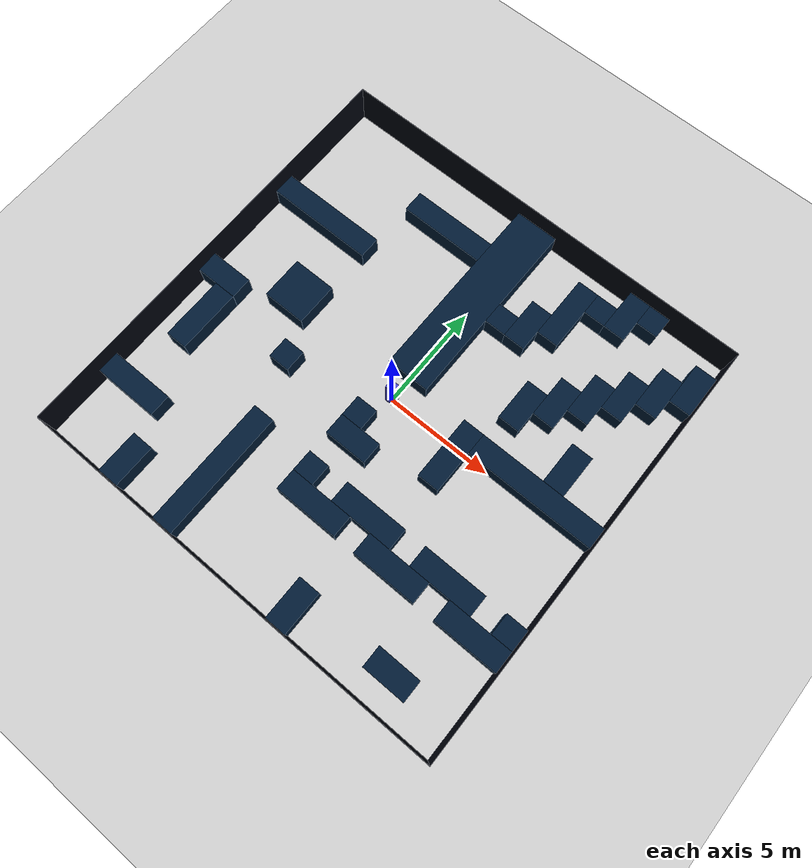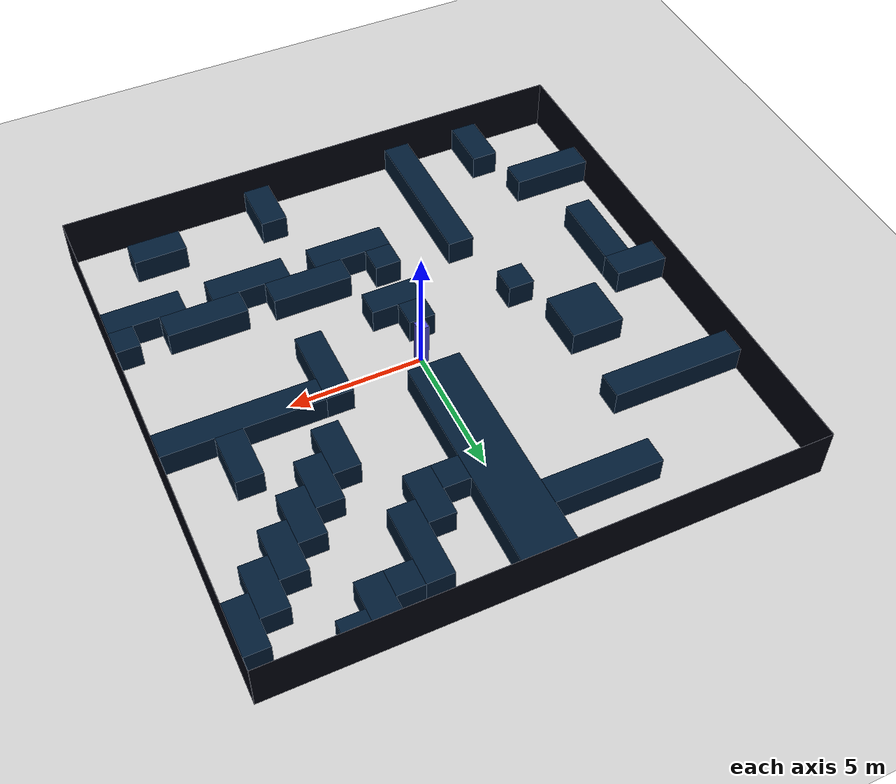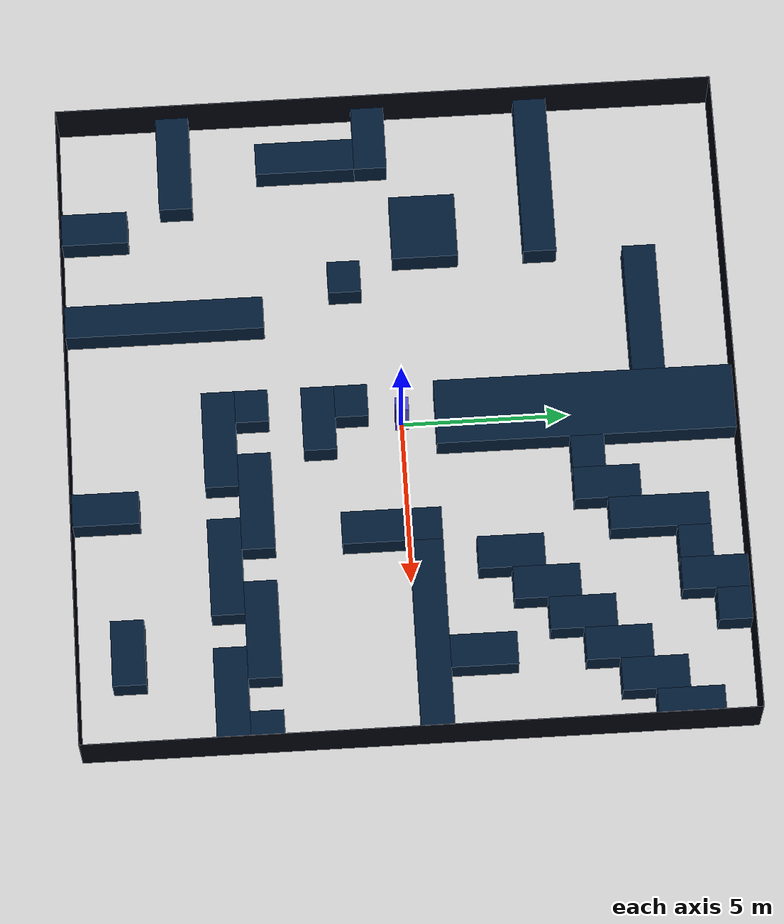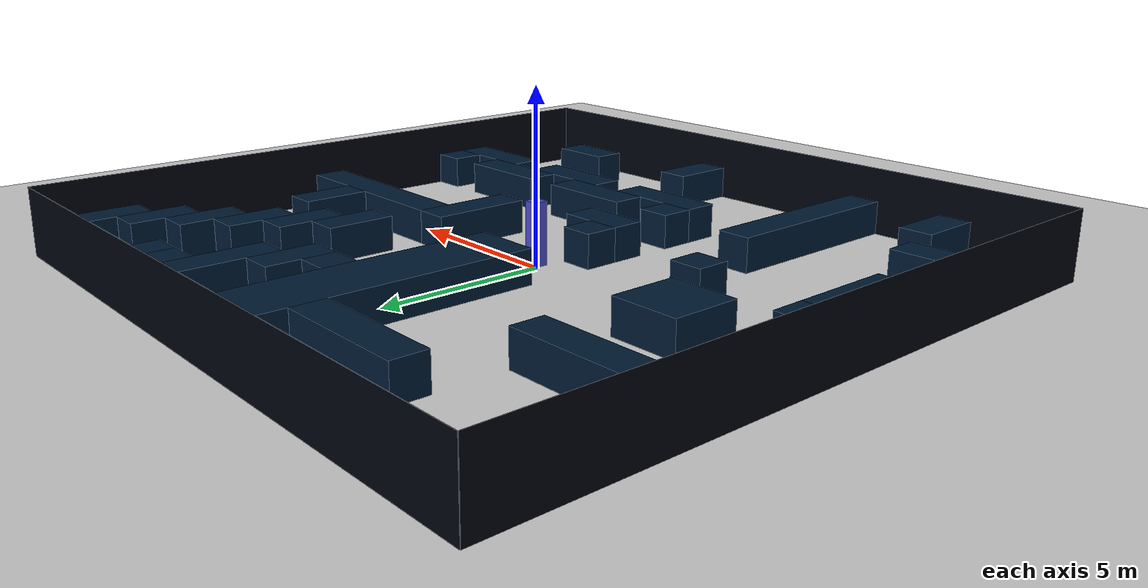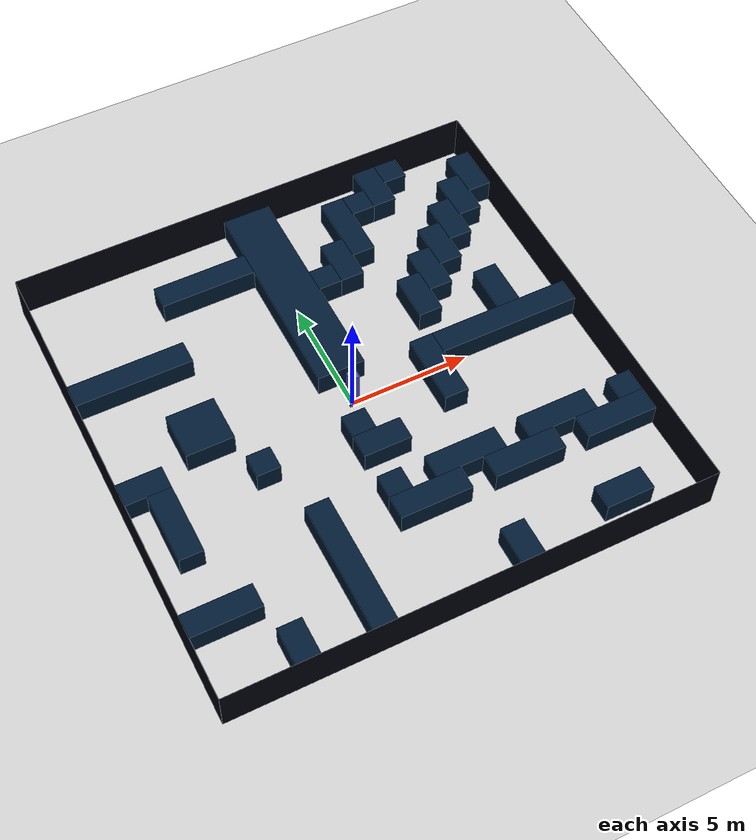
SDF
<?xml version="1.0"?>
<sdf version='1.8'>
    <world name='maze'>
        <physics name='1ms' type='ignored'>
            <max_step_size>0.003</max_step_size>
            <real_time_factor>1</real_time_factor>
            <real_time_update_rate>1000</real_time_update_rate>
        </physics>
        <plugin name='ignition::gazebo::systems::Physics' filename='ignition-gazebo-physics-system' />
        <plugin name='ignition::gazebo::systems::UserCommands' filename='ignition-gazebo-user-commands-system' />
        <plugin name='ignition::gazebo::systems::SceneBroadcaster' filename='ignition-gazebo-scene-broadcaster-system' />
        <plugin name='ignition::gazebo::systems::Contact' filename='ignition-gazebo-contact-system' />
        <light name='sun' type='directional'>
            <cast_shadows>1</cast_shadows>
            <pose>0 0 10 0 -0 0</pose>
            <diffuse>0.8 0.8 0.8 1</diffuse>
            <specular>0.2 0.2 0.2 1</specular>
            <attenuation>
                <range>1000</range>
                <constant>0.90000000000000002</constant>
                <linear>0.01</linear>
                <quadratic>0.001</quadratic>
            </attenuation>
            <direction>-0.5 0.1 -0.9</direction>
            <spot>
                <inner_angle>0</inner_angle>
                <outer_angle>0</outer_angle>
                <falloff>0</falloff>
            </spot>
        </light>
        <gravity>0 0 -9.8</gravity>
        <magnetic_field>6e-06 2.3e-05 -4.2e-05</magnetic_field>
        <atmosphere type='adiabatic' />
        <scene>
            <ambient>0.4 0.4 0.4 1</ambient>
            <background>0.7 0.7 0.7 1</background>
            <shadows>1</shadows>
        </scene>
        <model name='static_human'>
          <static>false</static>
          <pose>0 0 1 0 0 0</pose>
          <link name='link'>
            <inertial>
              <mass>70</mass>
              <inertia>
                <ixx>0.5</ixx>
                <ixy>0</ixy>
                <ixz>0</ixz>
                <iyy>0.5</iyy>
                <iyz>0</iyz>
                <izz>0.5</izz>
              </inertia>
            </inertial>
            <collision name='collision'>
              <geometry>
                <box>
                  <size>0.4 0.4 1.8</size>
                </box>
              </geometry>
            </collision>
            <visual name='visual'>
              <geometry>
                <box>
                  <size>0.4 0.4 1.8</size>
                </box>
              </geometry>
              <material>
                <ambient>0.3 0.3 0.8 1</ambient>
                <diffuse>0.3 0.3 0.8 1</diffuse>
                <specular>0.1 0.1 0.1 1</specular>
              </material>
            </visual>
          </link>
        </model>

        <model name='ground_plane'>
            <static>1</static>
            <link name='link'>
                <collision name='collision'>
                    <geometry>
                        <plane>
                            <normal>0 0 1</normal>
                            <size>100 100</size>
                        </plane>
                    </geometry>
                    <surface>
                        <friction>
                            <ode />
                        </friction>
                        <bounce />
                        <contact />
                    </surface>
                </collision>
                <visual name='visual'>
                    <geometry>
                        <plane>
                            <normal>0 0 1</normal>
                            <size>100 100</size>
                        </plane>
                    </geometry>
                    <material>
                        <ambient>0.8 0.8 0.8 1</ambient>
                        <diffuse>0.8 0.8 0.8 1</diffuse>
                        <specular>0.8 0.8 0.8 1</specular>
                    </material>
                    <plugin name='__default__' filename='__default__' />
                </visual>
            </link>
            <plugin name='__default__' filename='__default__' />
            <pose>0 0 0 0 -0 0</pose>
        </model>

        <model name='border'>
            <pose>0 0 1 0 0 0</pose>
            <static>true</static>
            <link name='wall1'>
                <pose>-10.005 0 0 0 0 0</pose>
                <static>true</static>
                <collision name='wall1_collision'>
                    <geometry>
                        <box>
                            <size>0.01 20 2</size>
                        </box>
                    </geometry>
                </collision>
                <visual name='wall1_visual'>
                    <geometry>
                        <box>
                            <size>0.01 20 2</size>
                        </box>
                    </geometry>
                    <material>
                        <ambient>0.1 0.1 0.1 1</ambient>
                        <diffuse>0 0.01 0.05 1</diffuse>
                        <specular>0 0.01 0.05 1</specular>
                    </material>
                </visual>
            </link>
            <link name='wall2'>
                <pose>10.005 0 0 0 0 0</pose>
                <static>true</static>
                <collision name='wall2_collision'>
                    <geometry>
                        <box>
                            <size>0.01 20 2</size>
                        </box>
                    </geometry>
                </collision>
                <visual name='wall2_visual'>
                    <geometry>
                        <box>
                            <size>0.01 20 2</size>
                        </box>
                    </geometry>
                    <material>
                        <ambient>0.1 0.1 0.1 1</ambient>
                        <diffuse>0 0.01 0.05 1</diffuse>
                        <specular>0 0.01 0.05 1</specular>
                    </material>
                </visual>
            </link>
            <link name='wall3'>
                <pose>0 10.005 0 0 0 0</pose>
                <static>true</static>
                <collision name='wall3_collision'>
                    <geometry>
                        <box>
                            <size>20 0.01 2</size>
                        </box>
                    </geometry>
                </collision>
                <visual name='wall3_visual'>
                    <geometry>
                        <box>
                            <size>20 0.01 2</size>
                        </box>
                    </geometry>
                    <material>
                        <ambient>0.1 0.1 0.1 1</ambient>
                        <diffuse>0 0.01 0.05 1</diffuse>
                        <specular>0 0.01 0.05 1</specular>
                    </material>
                </visual>
            </link>
            <link name='wall4'>
                <pose>0 -10.005 0 0 0 0</pose>
                <static>true</static>
                <collision name='wall4_collision'>
                    <geometry>
                        <box>
                            <size>20 0.01 2</size>
                        </box>
                    </geometry>
                    <material>
                        <ambient>0.1 0.1 0.1 1</ambient>
                        <diffuse>0 0.01 0.05 1</diffuse>
                        <specular>0 0.01 0.05 1</specular>
                    </material>
                </collision>
                <visual name='wall4_visual'>
                    <geometry>
                        <box>
                            <size>20 0.01 2</size>
                        </box>
                    </geometry>
                    <material>
                        <ambient>0.1 0.1 0.1 1</ambient>
                        <diffuse>0 0.01 0.05 1</diffuse>
                        <specular>0 0.01 0.05 1</specular>
                    </material>
                </visual>
            </link>
        </model>

        <model name='obstacles'>
            <pose>0 0 0.5 0 0 0</pose>
            <static>true</static>
            <link name='wall1'>
                <pose>-6.5 -9 0 0 0 0</pose>
                <static>true</static>
                <collision name='wall1_collision'>
                    <geometry>
                        <box>
                            <size>1 2 1</size>
                        </box>
                    </geometry>
                </collision>
                <visual name='wall1_visual'>
                    <geometry>
                        <box>
                            <size>1 2 1</size>
                        </box>
                    </geometry>
                    <material>
                        <ambient>0.1 0.1 0.1 1</ambient>
                        <diffuse>0 0.1 0.2 1</diffuse>
                        <specular>0 0.01 0.05 1</specular>
                    </material>
                </visual>
            </link>

            <link name='wall2'>
                <pose>-8.5 -6.5 0 0 0 0</pose>
                <static>true</static>
                <collision name='wall2_collision'>
                    <geometry>
                        <box>
                            <size>3 1 1</size>
                        </box>
                    </geometry>
                </collision>
                <visual name='wall2_visual'>
                    <geometry>
                        <box>
                            <size>3 1 1</size>
                        </box>
                    </geometry>
                    <material>
                        <ambient>0.1 0.1 0.1 1</ambient>
                        <diffuse>0 0.1 0.2 1</diffuse>
                        <specular>0 0.01 0.05 1</specular>
                    </material>
                </visual>
            </link>

            <link name='wall3'>
                <pose>-3.5 -7 0 0 0 0</pose>
                <static>true</static>
                <collision name='wall3_collision'>
                    <geometry>
                        <box>
                            <size>1 6 1</size>
                        </box>
                    </geometry>
                </collision>
                <visual name='wall3_visual'>
                    <geometry>
                        <box>
                            <size>1 6 1</size>
                        </box>
                    </geometry>
                    <material>
                        <ambient>0.1 0.1 0.1 1</ambient>
                        <diffuse>0 0.1 0.2 1</diffuse>
                        <specular>0 0.01 0.05 1</specular>
                    </material>
                </visual>
            </link>

            <link name='wall4'>
                <pose>2.5 -9 0 0 0 0</pose>
                <static>true</static>
                <collision name='wall4_collision'>
                    <geometry>
                        <box>
                            <size>1 2 1</size>
                        </box>
                    </geometry>
                </collision>
                <visual name='wall4_visual'>
                    <geometry>
                        <box>
                            <size>1 2 1</size>
                        </box>
                    </geometry>
                    <material>
                        <ambient>0.1 0.1 0.1 1</ambient>
                        <diffuse>0 0.1 0.2 1</diffuse>
                        <specular>0 0.01 0.05 1</specular>
                    </material>
                </visual>
            </link>

            <link name='wall5'>
                <pose>7 -8.5 0 0 0 0</pose>
                <static>true</static>
                <collision name='wall5_collision'>
                    <geometry>
                        <box>
                            <size>2 1 1</size>
                        </box>
                    </geometry>
                </collision>
                <visual name='wall5_visual'>
                    <geometry>
                        <box>
                            <size>2 1 1</size>
                        </box>
                    </geometry>
                    <material>
                        <ambient>0.1 0.1 0.1 1</ambient>
                        <diffuse>0 0.1 0.2 1</diffuse>
                        <specular>0 0.01 0.05 1</specular>
                    </material>
                </visual>
            </link>

            <link name='wall6'>
                <pose>-9 -0.5 0 0 0 0</pose>
                <static>true</static>
                <collision name='wall6_collision'>
                    <geometry>
                        <box>
                            <size>2 1 1</size>
                        </box>
                    </geometry>
                </collision>
                <visual name='wall6_visual'>
                    <geometry>
                        <box>
                            <size>2 1 1</size>
                        </box>
                    </geometry>
                    <material>
                        <ambient>0.1 0.1 0.1 1</ambient>
                        <diffuse>0 0.1 0.2 1</diffuse>
                        <specular>0 0.01 0.05 1</specular>
                    </material>
                </visual>
            </link>

            <link name='wall7'>
                <pose>-8.5 -2.5 0 0 0 0</pose>
                <static>true</static>
                <collision name='wall7_collision'>
                    <geometry>
                        <box>
                            <size>1 3 1</size>
                        </box>
                    </geometry>
                </collision>
                <visual name='wall7_visual'>
                    <geometry>
                        <box>
                            <size>1 3 1</size>
                        </box>
                    </geometry>
                    <material>
                        <ambient>0.1 0.1 0.1 1</ambient>
                        <diffuse>0 0.1 0.2 1</diffuse>
                        <specular>0 0.01 0.05 1</specular>
                    </material>
                </visual>
            </link>

            <link name='wall8'>
                <pose>-4.5 -1.5 0 0 0 0</pose>
                <static>true</static>
                <collision name='wall8_collision'>
                    <geometry>
                        <box>
                            <size>1 1 1</size>
                        </box>
                    </geometry>
                </collision>
                <visual name='wall8_visual'>
                    <geometry>
                        <box>
                            <size>1 1 1</size>
                        </box>
                    </geometry>
                    <material>
                        <ambient>0.1 0.1 0.1 1</ambient>
                        <diffuse>0 0.1 0.2 1</diffuse>
                        <specular>0 0.01 0.05 1</specular>
                    </material>
                </visual>
            </link>

            <link name='wall9'>
                <pose>-6 1 0 0 0 0</pose>
                <static>true</static>
                <collision name='wall9_collision'>
                    <geometry>
                        <box>
                            <size>2 2 1</size>
                        </box>
                    </geometry>
                </collision>
                <visual name='wall9_visual'>
                    <geometry>
                        <box>
                            <size>2 2 1</size>
                        </box>
                    </geometry>
                    <material>
                        <ambient>0.1 0.1 0.1 1</ambient>
                        <diffuse>0 0.1 0.2 1</diffuse>
                        <specular>0 0.01 0.05 1</specular>
                    </material>
                </visual>
            </link>

            <link name='wall10'>
                <pose>-7.5 4.5 0 0 0 0</pose>
                <static>true</static>
                <collision name='wall10_collision'>
                    <geometry>
                        <box>
                            <size>5 1 1</size>
                        </box>
                    </geometry>
                </collision>
                <visual name='wall10_visual'>
                    <geometry>
                        <box>
                            <size>5 1 1</size>
                        </box>
                    </geometry>
                    <material>
                        <ambient>0.1 0.1 0.1 1</ambient>
                        <diffuse>0 0.1 0.2 1</diffuse>
                        <specular>0 0.01 0.05 1</specular>
                    </material>
                </visual>
            </link>

            <link name='wall11'>
                <pose>-3 7.5 0 0 0 0</pose>
                <static>true</static>
                <collision name='wall11_collision'>
                    <geometry>
                        <box>
                            <size>4 1 1</size>
                        </box>
                    </geometry>
                </collision>
                <visual name='wall11_visual'>
                    <geometry>
                        <box>
                            <size>4 1 1</size>
                        </box>
                    </geometry>
                    <material>
                        <ambient>0.1 0.1 0.1 1</ambient>
                        <diffuse>0 0.1 0.2 1</diffuse>
                        <specular>0 0.01 0.05 1</specular>
                    </material>
                </visual>
            </link>
            <link name='wall12'>
                <pose>0 5.5 0 0 0 0</pose>
                <static>true</static>
                <collision name='wall12_collision'>
                    <geometry>
                        <box>
                            <size>2 9 1</size>
                        </box>
                    </geometry>
                </collision>
                <visual name='wall12_visual'>
                    <geometry>
                        <box>
                            <size>2 9 1</size>
                        </box>
                    </geometry>
                    <material>
                        <ambient>0.1 0.1 0.1 1</ambient>
                        <diffuse>0 0.1 0.2 1</diffuse>
                        <specular>0 0.01 0.05 1</specular>
                    </material>
                </visual>
            </link>

            <link name='wall13'>
                <pose>0 -2.5 0 0 0 0</pose>
                <static>true</static>
                <collision name='wall13_collision'>
                    <geometry>
                        <box>
                            <size>2 1 1</size>
                        </box>
                    </geometry>
                </collision>
                <visual name='wall13_visual'>
                    <geometry>
                        <box>
                            <size>2 1 1</size>
                        </box>
                    </geometry>
                    <material>
                        <ambient>0.1 0.1 0.1 1</ambient>
                        <diffuse>0 0.1 0.2 1</diffuse>
                        <specular>0 0.01 0.05 1</specular>
                    </material>
                </visual>
            </link>

            <link name='wall14'>
                <pose>-0.5 -1.5 0 0 0 0</pose>
                <static>true</static>
                <collision name='wall14_collision'>
                    <geometry>
                        <box>
                            <size>1 1 1</size>
                        </box>
                    </geometry>
                </collision>
                <visual name='wall14_visual'>
                    <geometry>
                        <box>
                            <size>1 1 1</size>
                        </box>
                    </geometry>
                    <material>
                        <ambient>0.1 0.1 0.1 1</ambient>
                        <diffuse>0 0.1 0.2 1</diffuse>
                        <specular>0 0.01 0.05 1</specular>
                    </material>
                </visual>
            </link>

            <link name='wall15'>
                <pose>-0.5 -4.5 0 0 0 0</pose>
                <static>true</static>
                <collision name='wall15_collision'>
                    <geometry>
                        <box>
                            <size>1 1 1</size>
                        </box>
                    </geometry>
                </collision>
                <visual name='wall15_visual'>
                    <geometry>
                        <box>
                            <size>1 1 1</size>
                        </box>
                    </geometry>
                    <material>
                        <ambient>0.1 0.1 0.1 1</ambient>
                        <diffuse>0 0.1 0.2 1</diffuse>
                        <specular>0 0.01 0.05 1</specular>
                    </material>
                </visual>
            </link>

            <link name='wall16'>
                <pose>0.5 -5.5 0 0 0 0</pose>
                <static>true</static>
                <collision name='wall16_collision'>
                    <geometry>
                        <box>
                            <size>3 1 1</size>
                        </box>
                    </geometry>
                </collision>
                <visual name='wall16_visual'>
                    <geometry>
                        <box>
                            <size>3 1 1</size>
                        </box>
                    </geometry>
                    <material>
                        <ambient>0.1 0.1 0.1 1</ambient>
                        <diffuse>0 0.1 0.2 1</diffuse>
                        <specular>0 0.01 0.05 1</specular>
                    </material>
                </visual>
            </link>

            <link name='wall17'>
                <pose>2.5 -4.5 0 0 0 0</pose>
                <static>true</static>
                <collision name='wall17_collision'>
                    <geometry>
                        <box>
                            <size>3 1 1</size>
                        </box>
                    </geometry>
                </collision>
                <visual name='wall17_visual'>
                    <geometry>
                        <box>
                            <size>3 1 1</size>
                        </box>
                    </geometry>
                    <material>
                        <ambient>0.1 0.1 0.1 1</ambient>
                        <diffuse>0 0.1 0.2 1</diffuse>
                        <specular>0 0.01 0.05 1</specular>
                    </material>
                </visual>
            </link>

            <link name='wall18'>
                <pose>4.5 -5.5 0 0 0 0</pose>
                <static>true</static>
                <collision name='wall18_collision'>
                    <geometry>
                        <box>
                            <size>3 1 1</size>
                        </box>
                    </geometry>
                </collision>
                <visual name='wall18_visual'>
                    <geometry>
                        <box>
                            <size>3 1 1</size>
                        </box>
                    </geometry>
                    <material>
                        <ambient>0.1 0.1 0.1 1</ambient>
                        <diffuse>0 0.1 0.2 1</diffuse>
                        <specular>0 0.01 0.05 1</specular>
                    </material>
                </visual>
            </link>

            <link name='wall19'>
                <pose>6.5 -4.5 0 0 0 0</pose>
                <static>true</static>
                <collision name='wall19_collision'>
                    <geometry>
                        <box>
                            <size>3 1 1</size>
                        </box>
                    </geometry>
                </collision>
                <visual name='wall19_visual'>
                    <geometry>
                        <box>
                            <size>3 1 1</size>
                        </box>
                    </geometry>
                    <material>
                        <ambient>0.1 0.1 0.1 1</ambient>
                        <diffuse>0 0.1 0.2 1</diffuse>
                        <specular>0 0.01 0.05 1</specular>
                    </material>
                </visual>
            </link>

            <link name='wall20'>
                <pose>8.5 -5.5 0 0 0 0</pose>
                <static>true</static>
                <collision name='wall20_collision'>
                    <geometry>
                        <box>
                            <size>3 1 1</size>
                        </box>
                    </geometry>
                </collision>
                <visual name='wall20_visual'>
                    <geometry>
                        <box>
                            <size>3 1 1</size>
                        </box>
                    </geometry>
                    <material>
                        <ambient>0.1 0.1 0.1 1</ambient>
                        <diffuse>0 0.1 0.2 1</diffuse>
                        <specular>0 0.01 0.05 1</specular>
                    </material>
                </visual>
            </link>

            <link name='wall21'>
                <pose>9.5 -4.5 0 0 0 0</pose>
                <static>true</static>
                <collision name='wall21_collision'>
                    <geometry>
                        <box>
                            <size>1 1 1</size>
                        </box>
                    </geometry>
                </collision>
                <visual name='wall21_visual'>
                    <geometry>
                        <box>
                            <size>1 1 1</size>
                        </box>
                    </geometry>
                    <material>
                        <ambient>0.1 0.1 0.1 1</ambient>
                        <diffuse>0 0.1 0.2 1</diffuse>
                        <specular>0 0.01 0.05 1</specular>
                    </material>
                </visual>
            </link>

            <link name='wall22'>
                <pose>3.5 -0.5 0 0 0 0</pose>
                <static>true</static>
                <collision name='wall22_collision'>
                    <geometry>
                        <box>
                            <size>1 3 1</size>
                        </box>
                    </geometry>
                </collision>
                <visual name='wall22_visual'>
                    <geometry>
                        <box>
                            <size>1 3 1</size>
                        </box>
                    </geometry>
                    <material>
                        <ambient>0.1 0.1 0.1 1</ambient>
                        <diffuse>0 0.1 0.2 1</diffuse>
                        <specular>0 0.01 0.05 1</specular>
                    </material>
                </visual>
            </link>

            <link name='wall23'>
                <pose>7 0.5 0 0 0 0</pose>
                <static>true</static>
                <collision name='wall23_collision'>
                    <geometry>
                        <box>
                            <size>6 1 1</size>
                        </box>
                    </geometry>
                </collision>
                <visual name='wall23_visual'>
                    <geometry>
                        <box>
                            <size>6 1 1</size>
                        </box>
                    </geometry>
                    <material>
                        <ambient>0.1 0.1 0.1 1</ambient>
                        <diffuse>0 0.1 0.2 1</diffuse>
                        <specular>0 0.01 0.05 1</specular>
                    </material>
                </visual>
            </link>

            <link name='wall24'>
                <pose>7.5 2 0 0 0 0</pose>
                <static>true</static>
                <collision name='wall24_collision'>
                    <geometry>
                        <box>
                            <size>1 2 1</size>
                        </box>
                    </geometry>
                </collision>
                <visual name='wall24_visual'>
                    <geometry>
                        <box>
                            <size>1 2 1</size>
                        </box>
                    </geometry>
                    <material>
                        <ambient>0.1 0.1 0.1 1</ambient>
                        <diffuse>0 0.1 0.2 1</diffuse>
                        <specular>0 0.01 0.05 1</specular>
                    </material>
                </visual>
            </link>

            <link name='wall25'>
                <pose>1.5 5.5 0 0 0 0</pose>
                <static>true</static>
                <collision name='wall25_collision'>
                    <geometry>
                        <box>
                            <size>1 1 1</size>
                        </box>
                    </geometry>
                </collision>
                <visual name='wall25_visual'>
                    <geometry>
                        <box>
                            <size>1 1 1</size>
                        </box>
                    </geometry>
                    <material>
                        <ambient>0.1 0.1 0.1 1</ambient>
                        <diffuse>0 0.1 0.2 1</diffuse>
                        <specular>0 0.01 0.05 1</specular>
                    </material>
                </visual>
            </link>

            <link name='wall26'>
                <pose>2.5 6 0 0 0 0</pose>
                <static>true</static>
                <collision name='wall26_collision'>
                    <geometry>
                        <box>
                            <size>1 2 1</size>
                        </box>
                    </geometry>
                </collision>
                <visual name='wall26_visual'>
                    <geometry>
                        <box>
                            <size>1 2 1</size>
                        </box>
                    </geometry>
                    <material>
                        <ambient>0.1 0.1 0.1 1</ambient>
                        <diffuse>0 0.1 0.2 1</diffuse>
                        <specular>0 0.01 0.05 1</specular>
                    </material>
                </visual>
            </link>

            <link name='wall27'>
                <pose>3.5 7.5 0 0 0 0</pose>
                <static>true</static>
                <collision name='wall27_collision'>
                    <geometry>
                        <box>
                            <size>1 3 1</size>
                        </box>
                    </geometry>
                </collision>
                <visual name='wall27_visual'>
                    <geometry>
                        <box>
                            <size>1 3 1</size>
                        </box>
                    </geometry>
                    <material>
                        <ambient>0.1 0.1 0.1 1</ambient>
                        <diffuse>0 0.1 0.2 1</diffuse>
                        <specular>0 0.01 0.05 1</specular>
                    </material>
                </visual>
            </link>

            <link name='wall28'>
                <pose>4.5 8.5 0 0 0 0</pose>
                <static>true</static>
                <collision name='wall28_collision'>
                    <geometry>
                        <box>
                            <size>1 1 1</size>
                        </box>
                    </geometry>
                </collision>
                <visual name='wall28_visual'>
                    <geometry>
                        <box>
                            <size>1 1 1</size>
                        </box>
                    </geometry>
                    <material>
                        <ambient>0.1 0.1 0.1 1</ambient>
                        <diffuse>0 0.1 0.2 1</diffuse>
                        <specular>0 0.01 0.05 1</specular>
                    </material>
                </visual>
            </link>

            <link name='wall29'>
                <pose>5.5 9 0 0 0 0</pose>
                <static>true</static>
                <collision name='wall29_collision'>
                    <geometry>
                        <box>
                            <size>1 2 1</size>
                        </box>
                    </geometry>
                </collision>
                <visual name='wall29_visual'>
                    <geometry>
                        <box>
                            <size>1 2 1</size>
                        </box>
                    </geometry>
                    <material>
                        <ambient>0.1 0.1 0.1 1</ambient>
                        <diffuse>0 0.1 0.2 1</diffuse>
                        <specular>0 0.01 0.05 1</specular>
                    </material>
                </visual>
            </link>

            <link name='wall30'>
                <pose>6.5 9.5 0 0 0 0</pose>
                <static>true</static>
                <collision name='wall30_collision'>
                    <geometry>
                        <box>
                            <size>1 1 1</size>
                        </box>
                    </geometry>
                </collision>
                <visual name='wall30_visual'>
                    <geometry>
                        <box>
                            <size>1 1 1</size>
                        </box>
                    </geometry>
                    <material>
                        <ambient>0.1 0.1 0.1 1</ambient>
                        <diffuse>0 0.1 0.2 1</diffuse>
                        <specular>0 0.01 0.05 1</specular>
                    </material>
                </visual>
            </link>

            <link name='wall31'>
                <pose>4.5 3 0 0 0 0</pose>
                <static>true</static>
                <collision name='wall31_collision'>
                    <geometry>
                        <box>
                            <size>1 2 1</size>
                        </box>
                    </geometry>
                </collision>
                <visual name='wall31_visual'>
                    <geometry>
                        <box>
                            <size>1 2 1</size>
                        </box>
                    </geometry>
                    <material>
                        <ambient>0.1 0.1 0.1 1</ambient>
                        <diffuse>0 0.1 0.2 1</diffuse>
                        <specular>0 0.01 0.05 1</specular>
                    </material>
                </visual>
            </link>

            <link name='wall32'>
                <pose>5.5 4 0 0 0 0</pose>
                <static>true</static>
                <collision name='wall32_collision'>
                    <geometry>
                        <box>
                            <size>1 2 1</size>
                        </box>
                    </geometry>
                </collision>
                <visual name='wall32_visual'>
                    <geometry>
                        <box>
                            <size>1 2 1</size>
                        </box>
                    </geometry>
                    <material>
                        <ambient>0.1 0.1 0.1 1</ambient>
                        <diffuse>0 0.1 0.2 1</diffuse>
                        <specular>0 0.01 0.05 1</specular>
                    </material>
                </visual>
            </link>

            <link name='wall33'>
                <pose>6.5 5 0 0 0 0</pose>
                <static>true</static>
                <collision name='wall33_collision'>
                    <geometry>
                        <box>
                            <size>1 2 1</size>
                        </box>
                    </geometry>
                </collision>
                <visual name='wall33_visual'>
                    <geometry>
                        <box>
                            <size>1 2 1</size>
                        </box>
                    </geometry>
                    <material>
                        <ambient>0.1 0.1 0.1 1</ambient>
                        <diffuse>0 0.1 0.2 1</diffuse>
                        <specular>0 0.01 0.05 1</specular>
                    </material>
                </visual>
            </link>

            <link name='wall34'>
                <pose>7.5 6 0 0 0 0</pose>
                <static>true</static>
                <collision name='wall34_collision'>
                    <geometry>
                        <box>
                            <size>1 2 1</size>
                        </box>
                    </geometry>
                </collision>
                <visual name='wall34_visual'>
                    <geometry>
                        <box>
                            <size>1 2 1</size>
                        </box>
                    </geometry>
                    <material>
                        <ambient>0.1 0.1 0.1 1</ambient>
                        <diffuse>0 0.1 0.2 1</diffuse>
                        <specular>0 0.01 0.05 1</specular>
                    </material>
                </visual>
            </link>

            <link name='wall35'>
                <pose>8.5 7 0 0 0 0</pose>
                <static>true</static>
                <collision name='wall35_collision'>
                    <geometry>
                        <box>
                            <size>1 2 1</size>
                        </box>
                    </geometry>
                </collision>
                <visual name='wall35_visual'>
                    <geometry>
                        <box>
                            <size>1 2 1</size>
                        </box>
                    </geometry>
                    <material>
                        <ambient>0.1 0.1 0.1 1</ambient>
                        <diffuse>0 0.1 0.2 1</diffuse>
                        <specular>0 0.01 0.05 1</specular>
                    </material>
                </visual>
            </link>

            <link name='wall36'>
                <pose>9.5 8 0 0 0 0</pose>
                <static>true</static>
                <collision name='wall36_collision'>
                    <geometry>
                        <box>
                            <size>1 2 1</size>
                        </box>
                    </geometry>
                </collision>
                <visual name='wall36_visual'>
                    <geometry>
                        <box>
                            <size>1 2 1</size>
                        </box>
                    </geometry>
                    <material>
                        <ambient>0.1 0.1 0.1 1</ambient>
                        <diffuse>0 0.1 0.2 1</diffuse>
                        <specular>0 0.01 0.05 1</specular>
                    </material>
                </visual>
            </link>
        </model>
    </world>
</sdf>
